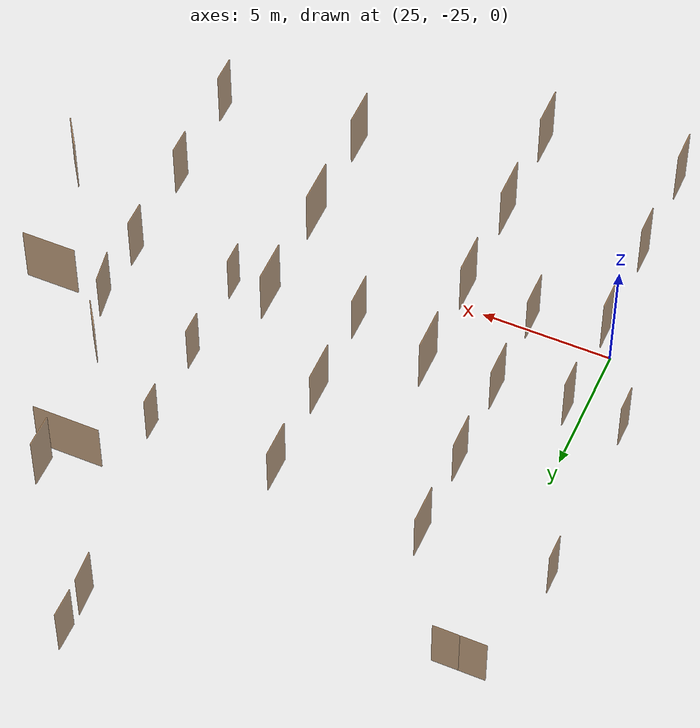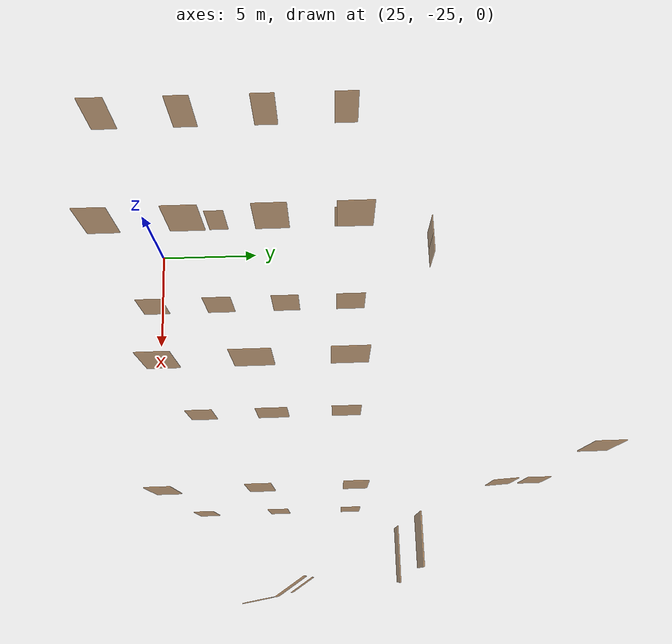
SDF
<sdf version="1.7">
 <world name="sim_world">
  <model name="L1_left_consult_rm_4_outer">
   <pose>28.179085419791573 -25.272043382946833 0.0 0 0 1.5707963267948966</pose>
   <static>true</static>
   <link name="right">
    <pose>0 0 1.11 0 0 0</pose>
    <visual name="right_visual">
     <geometry><box><size>1.3399250028845076 0.03 2.2</size></box></geometry>
     <material>
      <ambient>0.5 0.25 0 0.6</ambient>
      <diffuse>0.5 0.25 0 0.6</diffuse>
      <pbr><metal><metalness>0.0</metalness></metal></pbr>
     </material>
    </visual>
    <collision name="right_collision">
     <geometry><box><size>1.3399250028845076 0.03 2.2</size></box></geometry>
     <surface><contact><collide_bitmask>0x02</collide_bitmask></contact></surface>
    </collision>
    <inertial>
     <mass>50.0</mass>
     <inertia><ixx>20.17041666666667</ixx><iyy>27.64749588897937</iyy><izz>7.484579222312698</izz></inertia>
    </inertial>
   </link>
   <joint name="right_joint" type="prismatic">
    <parent>world</parent>
    <child>right</child>
    <axis>
     <xyz>1 0 0</xyz>
     <limit><lower>0.0</lower><upper>1.3499250028845076</upper><effort>500.0</effort></limit>
    </axis>
   </joint>
  </model>
  <model name="L1_left_consult_rm_3_outer">
   <pose>28.179085419791573 -21.845877081650727 0.0 0 0 1.5707963267948966</pose>
   <static>true</static>
   <link name="right">
    <pose>0 0 1.11 0 0 0</pose>
    <visual name="right_visual">
     <geometry><box><size>1.4299792315680138 0.03 2.2</size></box></geometry>
     <material>
      <ambient>0.5 0.25 0 0.6</ambient>
      <diffuse>0.5 0.25 0 0.6</diffuse>
      <pbr><metal><metalness>0.0</metalness></metal></pbr>
     </material>
    </visual>
    <collision name="right_collision">
     <geometry><box><size>1.4299792315680138 0.03 2.2</size></box></geometry>
     <surface><contact><collide_bitmask>0x02</collide_bitmask></contact></surface>
    </collision>
    <inertial>
     <mass>50.0</mass>
     <inertia><ixx>20.17041666666667</ixx><iyy>28.686835844649366</iyy><izz>8.523919177982698</izz></inertia>
    </inertial>
   </link>
   <joint name="right_joint" type="prismatic">
    <parent>world</parent>
    <child>right</child>
    <axis>
     <xyz>1 0 0</xyz>
     <limit><lower>0.0</lower><upper>1.4399792315680138</upper><effort>500.0</effort></limit>
    </axis>
   </joint>
  </model>
  <model name="L1_left_consult_rm_2_outer">
   <pose>28.179085419791573 -18.38420060766895 0.0 0 0 1.5707963267948966</pose>
   <static>true</static>
   <link name="right">
    <pose>0 0 1.11 0 0 0</pose>
    <visual name="right_visual">
     <geometry><box><size>1.3918306988192783 0.03 2.2</size></box></geometry>
     <material>
      <ambient>0.5 0.25 0 0.6</ambient>
      <diffuse>0.5 0.25 0 0.6</diffuse>
      <pbr><metal><metalness>0.0</metalness></metal></pbr>
     </material>
    </visual>
    <collision name="right_collision">
     <geometry><box><size>1.3918306988192783 0.03 2.2</size></box></geometry>
     <surface><contact><collide_bitmask>0x02</collide_bitmask></contact></surface>
    </collision>
    <inertial>
     <mass>50.0</mass>
     <inertia><ixx>20.17041666666667</ixx><iyy>28.23830289239901</iyy><izz>8.075386225732336</izz></inertia>
    </inertial>
   </link>
   <joint name="right_joint" type="prismatic">
    <parent>world</parent>
    <child>right</child>
    <axis>
     <xyz>1 0 0</xyz>
     <limit><lower>0.0</lower><upper>1.4018306988192784</upper><effort>500.0</effort></limit>
    </axis>
   </joint>
  </model>
  <model name="L1_left_consult_rm_1_outer">
   <pose>28.179085419791573 -15.017895465559029 0.0 0 0 -1.5707963267948966</pose>
   <static>true</static>
   <link name="right">
    <pose>0 0 1.11 0 0 0</pose>
    <visual name="right_visual">
     <geometry><box><size>1.4871885696703975 0.03 2.2</size></box></geometry>
     <material>
      <ambient>0.5 0.25 0 0.6</ambient>
      <diffuse>0.5 0.25 0 0.6</diffuse>
      <pbr><metal><metalness>0.0</metalness></metal></pbr>
     </material>
    </visual>
    <collision name="right_collision">
     <geometry><box><size>1.4871885696703975 0.03 2.2</size></box></geometry>
     <surface><contact><collide_bitmask>0x02</collide_bitmask></contact></surface>
    </collision>
    <inertial>
     <mass>50.0</mass>
     <inertia><ixx>20.17041666666667</ixx><iyy>29.38220767399285</iyy><izz>9.219291007326179</izz></inertia>
    </inertial>
   </link>
   <joint name="right_joint" type="prismatic">
    <parent>world</parent>
    <child>right</child>
    <axis>
     <xyz>1 0 0</xyz>
     <limit><lower>0.0</lower><upper>1.4971885696703975</upper><effort>500.0</effort></limit>
    </axis>
   </joint>
  </model>
  <model name="L1_right_consult_rm_11_outer">
   <pose>33.97311257259339 -22.67927579708475 0.0 0 0 -1.5707963267948966</pose>
   <static>true</static>
   <link name="right">
    <pose>0 0 1.11 0 0 0</pose>
    <visual name="right_visual">
     <geometry><box><size>1.3049532710280383 0.03 2.2</size></box></geometry>
     <material>
      <ambient>0.5 0.25 0 0.6</ambient>
      <diffuse>0.5 0.25 0 0.6</diffuse>
      <pbr><metal><metalness>0.0</metalness></metal></pbr>
     </material>
    </visual>
    <collision name="right_collision">
     <geometry><box><size>1.3049532710280383 0.03 2.2</size></box></geometry>
     <surface><contact><collide_bitmask>0x02</collide_bitmask></contact></surface>
    </collision>
    <inertial>
     <mass>50.0</mass>
     <inertia><ixx>20.17041666666667</ixx><iyy>27.26209599819491</iyy><izz>7.099179331528236</izz></inertia>
    </inertial>
   </link>
   <joint name="right_joint" type="prismatic">
    <parent>world</parent>
    <child>right</child>
    <axis>
     <xyz>1 0 0</xyz>
     <limit><lower>0.0</lower><upper>1.3149532710280383</upper><effort>500.0</effort></limit>
    </axis>
   </joint>
  </model>
  <model name="L1_right_consult_rm_12_outer">
   <pose>33.97311257259339 -19.137196646282852 0.0 0 0 -1.5707963267948966</pose>
   <static>true</static>
   <link name="right">
    <pose>0 0 1.11 0 0 0</pose>
    <visual name="right_visual">
     <geometry><box><size>1.5655586323602984 0.03 2.2</size></box></geometry>
     <material>
      <ambient>0.5 0.25 0 0.6</ambient>
      <diffuse>0.5 0.25 0 0.6</diffuse>
      <pbr><metal><metalness>0.0</metalness></metal></pbr>
     </material>
    </visual>
    <collision name="right_collision">
     <geometry><box><size>1.5655586323602984 0.03 2.2</size></box></geometry>
     <surface><contact><collide_bitmask>0x02</collide_bitmask></contact></surface>
    </collision>
    <inertial>
     <mass>50.0</mass>
     <inertia><ixx>20.17041666666667</ixx><iyy>30.379057630657705</iyy><izz>10.216140963991034</izz></inertia>
    </inertial>
   </link>
   <joint name="right_joint" type="prismatic">
    <parent>world</parent>
    <child>right</child>
    <axis>
     <xyz>1 0 0</xyz>
     <limit><lower>0.0</lower><upper>1.5755586323602984</upper><effort>500.0</effort></limit>
    </axis>
   </joint>
  </model>
  <model name="L1_right_consult_rm_13_outer">
   <pose>33.97311257259339 -15.447046267451267 0.0 0 0 -1.5707963267948966</pose>
   <static>true</static>
   <link name="right">
    <pose>0 0 1.11 0 0 0</pose>
    <visual name="right_visual">
     <geometry><box><size>1.4589473481789168 0.03 2.2</size></box></geometry>
     <material>
      <ambient>0.5 0.25 0 0.6</ambient>
      <diffuse>0.5 0.25 0 0.6</diffuse>
      <pbr><metal><metalness>0.0</metalness></metal></pbr>
     </material>
    </visual>
    <collision name="right_collision">
     <geometry><box><size>1.4589473481789168 0.03 2.2</size></box></geometry>
     <surface><contact><collide_bitmask>0x02</collide_bitmask></contact></surface>
    </collision>
    <inertial>
     <mass>50.0</mass>
     <inertia><ixx>20.17041666666667</ixx><iyy>29.035530686492898</iyy><izz>8.872614019826223</izz></inertia>
    </inertial>
   </link>
   <joint name="right_joint" type="prismatic">
    <parent>world</parent>
    <child>right</child>
    <axis>
     <xyz>1 0 0</xyz>
     <limit><lower>0.0</lower><upper>1.4689473481789168</upper><effort>500.0</effort></limit>
    </axis>
   </joint>
  </model>
  <model name="L1_left_consult_rm_1_inner">
   <pose>23.381523787546655 -15.199148109688101 0.0 0 0 -1.5707963267948966</pose>
   <static>true</static>
   <link name="right">
    <pose>0 0 1.11 0 0 0</pose>
    <visual name="right_visual">
     <geometry><box><size>0.9793042575285555 0.03 2.2</size></box></geometry>
     <material>
      <ambient>0.5 0.25 0 0.6</ambient>
      <diffuse>0.5 0.25 0 0.6</diffuse>
      <pbr><metal><metalness>0.0</metalness></metal></pbr>
     </material>
    </visual>
    <collision name="right_collision">
     <geometry><box><size>0.9793042575285555 0.03 2.2</size></box></geometry>
     <surface><contact><collide_bitmask>0x02</collide_bitmask></contact></surface>
    </collision>
    <inertial>
     <mass>50.0</mass>
     <inertia><ixx>20.17041666666667</ixx><iyy>24.162653453389822</iyy><izz>3.999736786723148</izz></inertia>
    </inertial>
   </link>
   <joint name="right_joint" type="prismatic">
    <parent>world</parent>
    <child>right</child>
    <axis>
     <xyz>1 0 0</xyz>
     <limit><lower>0.0</lower><upper>0.9893042575285556</upper><effort>500.0</effort></limit>
    </axis>
   </joint>
  </model>
  <model name="L1_left_consult_rm_3_inner">
   <pose>23.381523787546655 -22.029202722972215 0.0 0 0 -1.5707963267948966</pose>
   <static>true</static>
   <link name="right">
    <pose>0 0 1.11 0 0 0</pose>
    <visual name="right_visual">
     <geometry><box><size>1.0173451021114575 0.03 2.2</size></box></geometry>
     <material>
      <ambient>0.5 0.25 0 0.6</ambient>
      <diffuse>0.5 0.25 0 0.6</diffuse>
      <pbr><metal><metalness>0.0</metalness></metal></pbr>
     </material>
    </visual>
    <collision name="right_collision">
     <geometry><box><size>1.0173451021114575 0.03 2.2</size></box></geometry>
     <surface><contact><collide_bitmask>0x02</collide_bitmask></contact></surface>
    </collision>
    <inertial>
     <mass>50.0</mass>
     <inertia><ixx>20.17041666666667</ixx><iyy>24.479129403292387</iyy><izz>4.316212736625716</izz></inertia>
    </inertial>
   </link>
   <joint name="right_joint" type="prismatic">
    <parent>world</parent>
    <child>right</child>
    <axis>
     <xyz>1 0 0</xyz>
     <limit><lower>0.0</lower><upper>1.0273451021114575</upper><effort>500.0</effort></limit>
    </axis>
   </joint>
  </model>
  <model name="L1_cleaning_supplies">
   <pose>37.73509095804011 -6.428418137763938 0.0 0 0 1.5707963267948966</pose>
   <static>true</static>
   <link name="right">
    <pose>0 0 1.11 0 0 0</pose>
    <visual name="right_visual">
     <geometry><box><size>1.1157720856890128 0.03 2.2</size></box></geometry>
     <material>
      <ambient>0.5 0.25 0 0.6</ambient>
      <diffuse>0.5 0.25 0 0.6</diffuse>
      <pbr><metal><metalness>0.0</metalness></metal></pbr>
     </material>
    </visual>
    <collision name="right_collision">
     <geometry><box><size>1.1157720856890128 0.03 2.2</size></box></geometry>
     <surface><contact><collide_bitmask>0x02</collide_bitmask></contact></surface>
    </collision>
    <inertial>
     <mass>50.0</mass>
     <inertia><ixx>20.17041666666667</ixx><iyy>25.35394728001171</iyy><izz>5.19103061334504</izz></inertia>
    </inertial>
   </link>
   <joint name="right_joint" type="revolute">
    <parent>world</parent>
    <child>right</child>
    <axis><xyz>0 0 -1</xyz><limit><lower>0</lower><upper>1.57</upper></limit></axis>
    <pose>0.5628860428445064 0 0 0 0 0</pose>
   </joint>
  </model>
  <model name="L1_wc_2">
   <pose>37.76922810661132 -8.000907657397798 0.0 0 0 1.6272475606047323</pose>
   <static>true</static>
   <link name="right">
    <pose>0 0 1.11 0 0 0</pose>
    <visual name="right_visual">
     <geometry><box><size>1.2000811286351407 0.03 2.2</size></box></geometry>
     <material>
      <ambient>0.5 0.25 0 0.6</ambient>
      <diffuse>0.5 0.25 0 0.6</diffuse>
      <pbr><metal><metalness>0.0</metalness></metal></pbr>
     </material>
    </visual>
    <collision name="right_collision">
     <geometry><box><size>1.2000811286351407 0.03 2.2</size></box></geometry>
     <surface><contact><collide_bitmask>0x02</collide_bitmask></contact></surface>
    </collision>
    <inertial>
     <mass>50.0</mass>
     <inertia><ixx>20.17041666666667</ixx><iyy>26.167477980442474</iyy><izz>6.004561313775805</izz></inertia>
    </inertial>
   </link>
   <joint name="right_joint" type="revolute">
    <parent>world</parent>
    <child>right</child>
    <axis><xyz>0 0 -1</xyz><limit><lower>0</lower><upper>1.57</upper></limit></axis>
    <pose>0.6050405643175704 0 0 0 0 0</pose>
   </joint>
  </model>
  <model name="L1_right_consult_rm_11_inner">
   <pose>38.85542479135422 -22.34758278527751 0.0 0 0 1.5707963267948966</pose>
   <static>true</static>
   <link name="right">
    <pose>0 0 1.11 0 0 0</pose>
    <visual name="right_visual">
     <geometry><box><size>0.9258640052305702 0.03 2.2</size></box></geometry>
     <material>
      <ambient>0.5 0.25 0 0.6</ambient>
      <diffuse>0.5 0.25 0 0.6</diffuse>
      <pbr><metal><metalness>0.0</metalness></metal></pbr>
     </material>
    </visual>
    <collision name="right_collision">
     <geometry><box><size>0.9258640052305702 0.03 2.2</size></box></geometry>
     <surface><contact><collide_bitmask>0x02</collide_bitmask></contact></surface>
    </collision>
    <inertial>
     <mass>50.0</mass>
     <inertia><ixx>20.17041666666667</ixx><iyy>23.738433984089976</iyy><izz>3.575517317423306</izz></inertia>
    </inertial>
   </link>
   <joint name="right_joint" type="prismatic">
    <parent>world</parent>
    <child>right</child>
    <axis>
     <xyz>1 0 0</xyz>
     <limit><lower>0.0</lower><upper>0.9358640052305702</upper><effort>500.0</effort></limit>
    </axis>
   </joint>
  </model>
  <model name="L1_right_consult_rm_2_inner">
   <pose>42.93730433444871 -19.879491173416426 0.0 0 0 -1.4067292151199144</pose>
   <static>true</static>
   <link name="right">
    <pose>0 0 1.11 0 0 0</pose>
    <visual name="right_visual">
     <geometry><box><size>1.3117728040741947 0.03 2.2</size></box></geometry>
     <material>
      <ambient>0.5 0.25 0 0.6</ambient>
      <diffuse>0.5 0.25 0 0.6</diffuse>
      <pbr><metal><metalness>0.0</metalness></metal></pbr>
     </material>
    </visual>
    <collision name="right_collision">
     <geometry><box><size>1.3117728040741947 0.03 2.2</size></box></geometry>
     <surface><contact><collide_bitmask>0x02</collide_bitmask></contact></surface>
    </collision>
    <inertial>
     <mass>50.0</mass>
     <inertia><ixx>20.17041666666667</ixx><iyy>27.336449539619487</iyy><izz>7.173532872952816</izz></inertia>
    </inertial>
   </link>
   <joint name="right_joint" type="revolute">
    <parent>world</parent>
    <child>right</child>
    <axis><xyz>0 0 -1</xyz><limit><lower>0</lower><upper>1.57</upper></limit></axis>
    <pose>0.6608864020370974 0 0 0 0 0</pose>
   </joint>
  </model>
  <model name="L1_right_consult_rm_12_inner">
   <pose>38.85542479135422 -18.86473212568749 0.0 0 0 1.5707963267948966</pose>
   <static>true</static>
   <link name="right">
    <pose>0 0 1.11 0 0 0</pose>
    <visual name="right_visual">
     <geometry><box><size>0.9258640052305667 0.03 2.2</size></box></geometry>
     <material>
      <ambient>0.5 0.25 0 0.6</ambient>
      <diffuse>0.5 0.25 0 0.6</diffuse>
      <pbr><metal><metalness>0.0</metalness></metal></pbr>
     </material>
    </visual>
    <collision name="right_collision">
     <geometry><box><size>0.9258640052305667 0.03 2.2</size></box></geometry>
     <surface><contact><collide_bitmask>0x02</collide_bitmask></contact></surface>
    </collision>
    <inertial>
     <mass>50.0</mass>
     <inertia><ixx>20.17041666666667</ixx><iyy>23.738433984089948</iyy><izz>3.5755173174232784</izz></inertia>
    </inertial>
   </link>
   <joint name="right_joint" type="prismatic">
    <parent>world</parent>
    <child>right</child>
    <axis>
     <xyz>1 0 0</xyz>
     <limit><lower>0.0</lower><upper>0.9358640052305667</upper><effort>500.0</effort></limit>
    </axis>
   </joint>
  </model>
  <model name="L1_right_consult_rm_1_inner">
   <pose>42.30254990192688 -17.806843967539727 0.0 0 0 -0.9867955334441539</pose>
   <static>true</static>
   <link name="right">
    <pose>0 0 1.11 0 0 0</pose>
    <visual name="right_visual">
     <geometry><box><size>1.1804239723782883 0.03 2.2</size></box></geometry>
     <material>
      <ambient>0.5 0.25 0 0.6</ambient>
      <diffuse>0.5 0.25 0 0.6</diffuse>
      <pbr><metal><metalness>0.0</metalness></metal></pbr>
     </material>
    </visual>
    <collision name="right_collision">
     <geometry><box><size>1.1804239723782883 0.03 2.2</size></box></geometry>
     <surface><contact><collide_bitmask>0x02</collide_bitmask></contact></surface>
    </collision>
    <inertial>
     <mass>50.0</mass>
     <inertia><ixx>20.17041666666667</ixx><iyy>25.972503144022248</iyy><izz>5.809586477355575</izz></inertia>
    </inertial>
   </link>
   <joint name="right_joint" type="revolute">
    <parent>world</parent>
    <child>right</child>
    <axis><xyz>0 0 -1</xyz><limit><lower>0</lower><upper>1.57</upper></limit></axis>
    <pose>0.5952119861891442 0 0 0 0 0</pose>
   </joint>
  </model>
  <model name="L1_right_consult_rm_13_inner">
   <pose>38.85542479135422 -15.441109957309347 0.0 0 0 1.5707963267948966</pose>
   <static>true</static>
   <link name="right">
    <pose>0 0 1.11 0 0 0</pose>
    <visual name="right_visual">
     <geometry><box><size>0.90217260874582 0.03 2.2</size></box></geometry>
     <material>
      <ambient>0.5 0.25 0 0.6</ambient>
      <diffuse>0.5 0.25 0 0.6</diffuse>
      <pbr><metal><metalness>0.0</metalness></metal></pbr>
     </material>
    </visual>
    <collision name="right_collision">
     <geometry><box><size>0.90217260874582 0.03 2.2</size></box></geometry>
     <surface><contact><collide_bitmask>0x02</collide_bitmask></contact></surface>
    </collision>
    <inertial>
     <mass>50.0</mass>
     <inertia><ixx>20.17041666666667</ixx><iyy>23.557980899880164</iyy><izz>3.395064233213493</izz></inertia>
    </inertial>
   </link>
   <joint name="right_joint" type="prismatic">
    <parent>world</parent>
    <child>right</child>
    <axis>
     <xyz>1 0 0</xyz>
     <limit><lower>0.0</lower><upper>0.91217260874582</upper><effort>500.0</effort></limit>
    </axis>
   </joint>
  </model>
  <model name="L1_existing_single_ahu">
   <pose>24.978579670012714 -10.622360678435454 0.0 0 0 3.141592653589793</pose>
   <static>true</static>
   <link name="right">
    <pose>0.502641244567517 0 1.11 0 0 0</pose>
    <visual name="right_visual">
     <geometry><box><size>0.995282489135034 0.03 2.2</size></box></geometry>
     <material>
      <ambient>0.5 0.25 0 0.6</ambient>
      <diffuse>0.5 0.25 0 0.6</diffuse>
      <pbr><metal><metalness>0.0</metalness></metal></pbr>
     </material>
    </visual>
    <collision name="right_collision">
     <geometry><box><size>0.995282489135034 0.03 2.2</size></box></geometry>
     <surface><contact><collide_bitmask>0x02</collide_bitmask></contact></surface>
    </collision>
    <inertial>
     <mass>50.0</mass>
     <inertia><ixx>20.17041666666667</ixx><iyy>24.29411347157846</iyy><izz>4.131196804911788</izz></inertia>
    </inertial>
   </link>
   <joint name="right_joint" type="revolute">
    <parent>world</parent>
    <child>right</child>
    <axis><xyz>0 0 -1</xyz><limit><lower>0</lower><upper>1.57</upper></limit></axis>
    <pose>0.502641244567517 0 0 0 0 0</pose>
   </joint>
   <link name="left">
    <pose>-0.502641244567517 0 1.11 0 0 0</pose>
    <visual name="left_visual">
     <geometry><box><size>0.995282489135034 0.03 2.2</size></box></geometry>
     <material>
      <ambient>0.5 0.25 0 0.6</ambient>
      <diffuse>0.5 0.25 0 0.6</diffuse>
      <pbr><metal><metalness>0.0</metalness></metal></pbr>
     </material>
    </visual>
    <collision name="left_collision">
     <geometry><box><size>0.995282489135034 0.03 2.2</size></box></geometry>
     <surface><contact><collide_bitmask>0x02</collide_bitmask></contact></surface>
    </collision>
    <inertial>
     <mass>50.0</mass>
     <inertia><ixx>20.17041666666667</ixx><iyy>24.29411347157846</iyy><izz>4.131196804911788</izz></inertia>
    </inertial>
   </link>
   <joint name="left_joint" type="revolute">
    <parent>world</parent>
    <child>left</child>
    <axis><xyz>0 0 -1</xyz><limit><lower>-1.57</lower><upper>0</upper></limit></axis>
    <pose>-0.502641244567517 0 0 0 0 0</pose>
   </joint>
  </model>
  <model name="L1_right_inner">
   <pose>41.063624475981726 -13.26668397369333 0.0 0 0 3.141247508642615</pose>
   <link name="right">
    <pose>0 0 1.11 0 0 0</pose>
    <visual name="right_visual">
     <geometry><box><size>2.5640703813862693 0.03 2.2</size></box></geometry>
     <material>
      <ambient>0.5 0.25 0 0.6</ambient>
      <diffuse>0.5 0.25 0 0.6</diffuse>
      <pbr><metal><metalness>0.0</metalness></metal></pbr>
     </material>
    </visual>
    <collision name="right_collision">
     <geometry><box><size>2.5640703813862693 0.03 2.2</size></box></geometry>
     <surface><contact><collide_bitmask>0x02</collide_bitmask></contact></surface>
    </collision>
    <inertial>
     <mass>50.0</mass>
     <inertia><ixx>20.17041666666667</ixx><iyy>47.56023716959304</iyy><izz>27.39732050292637</izz></inertia>
    </inertial>
   </link>
   <joint name="right_joint" type="prismatic">
    <parent>world</parent>
    <child>right</child>
    <axis>
     <xyz>1 0 0</xyz>
     <limit><lower>0.0</lower><upper>2.574070381386269</upper><effort>500.0</effort></limit>
    </axis>
   </joint>
   <plugin name="door" filename="libdoor.so">
    <v_max_door>0.2</v_max_door>
    <a_max_door>0.2</a_max_door>
    <a_nom_door>0.08</a_nom_door>
    <dx_min_door>0.001</dx_min_door>
    <f_max_door>100.0</f_max_door>
    <door name="L1_right_inner" type="SlidingDoor" left_joint_name="empty_joint" right_joint_name="right_joint"/>
   </plugin>
  </model>
  <model name="L2_left_consult_rm_4_outer">
   <pose>28.179085419791573 -25.272043382946833 10.0 0 0 1.5707963267948966</pose>
   <static>true</static>
   <link name="right">
    <pose>0 0 1.11 0 0 0</pose>
    <visual name="right_visual">
     <geometry><box><size>1.3399250028845076 0.03 2.2</size></box></geometry>
     <material>
      <ambient>0.5 0.25 0 0.6</ambient>
      <diffuse>0.5 0.25 0 0.6</diffuse>
      <pbr><metal><metalness>0.0</metalness></metal></pbr>
     </material>
    </visual>
    <collision name="right_collision">
     <geometry><box><size>1.3399250028845076 0.03 2.2</size></box></geometry>
     <surface><contact><collide_bitmask>0x02</collide_bitmask></contact></surface>
    </collision>
    <inertial>
     <mass>50.0</mass>
     <inertia><ixx>20.17041666666667</ixx><iyy>27.64749588897937</iyy><izz>7.484579222312698</izz></inertia>
    </inertial>
   </link>
   <joint name="right_joint" type="prismatic">
    <parent>world</parent>
    <child>right</child>
    <axis>
     <xyz>1 0 0</xyz>
     <limit><lower>0.0</lower><upper>1.3499250028845076</upper><effort>500.0</effort></limit>
    </axis>
   </joint>
  </model>
  <model name="L2_left_consult_rm_3_outer">
   <pose>28.179085419791573 -21.845877081650727 10.0 0 0 1.5707963267948966</pose>
   <static>true</static>
   <link name="right">
    <pose>0 0 1.11 0 0 0</pose>
    <visual name="right_visual">
     <geometry><box><size>1.4299792315680138 0.03 2.2</size></box></geometry>
     <material>
      <ambient>0.5 0.25 0 0.6</ambient>
      <diffuse>0.5 0.25 0 0.6</diffuse>
      <pbr><metal><metalness>0.0</metalness></metal></pbr>
     </material>
    </visual>
    <collision name="right_collision">
     <geometry><box><size>1.4299792315680138 0.03 2.2</size></box></geometry>
     <surface><contact><collide_bitmask>0x02</collide_bitmask></contact></surface>
    </collision>
    <inertial>
     <mass>50.0</mass>
     <inertia><ixx>20.17041666666667</ixx><iyy>28.686835844649366</iyy><izz>8.523919177982698</izz></inertia>
    </inertial>
   </link>
   <joint name="right_joint" type="prismatic">
    <parent>world</parent>
    <child>right</child>
    <axis>
     <xyz>1 0 0</xyz>
     <limit><lower>0.0</lower><upper>1.4399792315680138</upper><effort>500.0</effort></limit>
    </axis>
   </joint>
  </model>
  <model name="L2_left_consult_rm_2_outer">
   <pose>28.179085419791573 -18.38420060766895 10.0 0 0 1.5707963267948966</pose>
   <static>true</static>
   <link name="right">
    <pose>0 0 1.11 0 0 0</pose>
    <visual name="right_visual">
     <geometry><box><size>1.3918306988192783 0.03 2.2</size></box></geometry>
     <material>
      <ambient>0.5 0.25 0 0.6</ambient>
      <diffuse>0.5 0.25 0 0.6</diffuse>
      <pbr><metal><metalness>0.0</metalness></metal></pbr>
     </material>
    </visual>
    <collision name="right_collision">
     <geometry><box><size>1.3918306988192783 0.03 2.2</size></box></geometry>
     <surface><contact><collide_bitmask>0x02</collide_bitmask></contact></surface>
    </collision>
    <inertial>
     <mass>50.0</mass>
     <inertia><ixx>20.17041666666667</ixx><iyy>28.23830289239901</iyy><izz>8.075386225732336</izz></inertia>
    </inertial>
   </link>
   <joint name="right_joint" type="prismatic">
    <parent>world</parent>
    <child>right</child>
    <axis>
     <xyz>1 0 0</xyz>
     <limit><lower>0.0</lower><upper>1.4018306988192784</upper><effort>500.0</effort></limit>
    </axis>
   </joint>
  </model>
  <model name="L2_left_consult_rm_1_outer">
   <pose>28.179085419791573 -15.017895465559029 10.0 0 0 -1.5707963267948966</pose>
   <static>true</static>
   <link name="right">
    <pose>0 0 1.11 0 0 0</pose>
    <visual name="right_visual">
     <geometry><box><size>1.4871885696703975 0.03 2.2</size></box></geometry>
     <material>
      <ambient>0.5 0.25 0 0.6</ambient>
      <diffuse>0.5 0.25 0 0.6</diffuse>
      <pbr><metal><metalness>0.0</metalness></metal></pbr>
     </material>
    </visual>
    <collision name="right_collision">
     <geometry><box><size>1.4871885696703975 0.03 2.2</size></box></geometry>
     <surface><contact><collide_bitmask>0x02</collide_bitmask></contact></surface>
    </collision>
    <inertial>
     <mass>50.0</mass>
     <inertia><ixx>20.17041666666667</ixx><iyy>29.38220767399285</iyy><izz>9.219291007326179</izz></inertia>
    </inertial>
   </link>
   <joint name="right_joint" type="prismatic">
    <parent>world</parent>
    <child>right</child>
    <axis>
     <xyz>1 0 0</xyz>
     <limit><lower>0.0</lower><upper>1.4971885696703975</upper><effort>500.0</effort></limit>
    </axis>
   </joint>
  </model>
  <model name="L2_right_consult_rm_11_outer">
   <pose>33.97311257259339 -22.67927579708475 10.0 0 0 -1.5707963267948966</pose>
   <static>true</static>
   <link name="right">
    <pose>0 0 1.11 0 0 0</pose>
    <visual name="right_visual">
     <geometry><box><size>1.3049532710280383 0.03 2.2</size></box></geometry>
     <material>
      <ambient>0.5 0.25 0 0.6</ambient>
      <diffuse>0.5 0.25 0 0.6</diffuse>
      <pbr><metal><metalness>0.0</metalness></metal></pbr>
     </material>
    </visual>
    <collision name="right_collision">
     <geometry><box><size>1.3049532710280383 0.03 2.2</size></box></geometry>
     <surface><contact><collide_bitmask>0x02</collide_bitmask></contact></surface>
    </collision>
    <inertial>
     <mass>50.0</mass>
     <inertia><ixx>20.17041666666667</ixx><iyy>27.26209599819491</iyy><izz>7.099179331528236</izz></inertia>
    </inertial>
   </link>
   <joint name="right_joint" type="prismatic">
    <parent>world</parent>
    <child>right</child>
    <axis>
     <xyz>1 0 0</xyz>
     <limit><lower>0.0</lower><upper>1.3149532710280383</upper><effort>500.0</effort></limit>
    </axis>
   </joint>
  </model>
  <model name="L2_right_consult_rm_12_outer">
   <pose>33.97311257259339 -19.137196646282852 10.0 0 0 -1.5707963267948966</pose>
   <static>true</static>
   <link name="right">
    <pose>0 0 1.11 0 0 0</pose>
    <visual name="right_visual">
     <geometry><box><size>1.5655586323602984 0.03 2.2</size></box></geometry>
     <material>
      <ambient>0.5 0.25 0 0.6</ambient>
      <diffuse>0.5 0.25 0 0.6</diffuse>
      <pbr><metal><metalness>0.0</metalness></metal></pbr>
     </material>
    </visual>
    <collision name="right_collision">
     <geometry><box><size>1.5655586323602984 0.03 2.2</size></box></geometry>
     <surface><contact><collide_bitmask>0x02</collide_bitmask></contact></surface>
    </collision>
    <inertial>
     <mass>50.0</mass>
     <inertia><ixx>20.17041666666667</ixx><iyy>30.379057630657705</iyy><izz>10.216140963991034</izz></inertia>
    </inertial>
   </link>
   <joint name="right_joint" type="prismatic">
    <parent>world</parent>
    <child>right</child>
    <axis>
     <xyz>1 0 0</xyz>
     <limit><lower>0.0</lower><upper>1.5755586323602984</upper><effort>500.0</effort></limit>
    </axis>
   </joint>
  </model>
  <model name="L2_right_consult_rm_13_outer">
   <pose>33.97311257259339 -15.447046267451267 10.0 0 0 -1.5707963267948966</pose>
   <static>true</static>
   <link name="right">
    <pose>0 0 1.11 0 0 0</pose>
    <visual name="right_visual">
     <geometry><box><size>1.4589473481789168 0.03 2.2</size></box></geometry>
     <material>
      <ambient>0.5 0.25 0 0.6</ambient>
      <diffuse>0.5 0.25 0 0.6</diffuse>
      <pbr><metal><metalness>0.0</metalness></metal></pbr>
     </material>
    </visual>
    <collision name="right_collision">
     <geometry><box><size>1.4589473481789168 0.03 2.2</size></box></geometry>
     <surface><contact><collide_bitmask>0x02</collide_bitmask></contact></surface>
    </collision>
    <inertial>
     <mass>50.0</mass>
     <inertia><ixx>20.17041666666667</ixx><iyy>29.035530686492898</iyy><izz>8.872614019826223</izz></inertia>
    </inertial>
   </link>
   <joint name="right_joint" type="prismatic">
    <parent>world</parent>
    <child>right</child>
    <axis>
     <xyz>1 0 0</xyz>
     <limit><lower>0.0</lower><upper>1.4689473481789168</upper><effort>500.0</effort></limit>
    </axis>
   </joint>
  </model>
  <model name="L2_left_consult_rm_4_inner">
   <pose>23.381523787546655 -25.472760663051446 10.0 0 0 -1.5707963267948966</pose>
   <static>true</static>
   <link name="right">
    <pose>0 0 1.11 0 0 0</pose>
    <visual name="right_visual">
     <geometry><box><size>1.0858616976270115 0.03 2.2</size></box></geometry>
     <material>
      <ambient>0.5 0.25 0 0.6</ambient>
      <diffuse>0.5 0.25 0 0.6</diffuse>
      <pbr><metal><metalness>0.0</metalness></metal></pbr>
     </material>
    </visual>
    <collision name="right_collision">
     <geometry><box><size>1.0858616976270115 0.03 2.2</size></box></geometry>
     <surface><contact><collide_bitmask>0x02</collide_bitmask></contact></surface>
    </collision>
    <inertial>
     <mass>50.0</mass>
     <inertia><ixx>20.17041666666667</ixx><iyy>25.079565109889238</iyy><izz>4.916648443222564</izz></inertia>
    </inertial>
   </link>
   <joint name="right_joint" type="prismatic">
    <parent>world</parent>
    <child>right</child>
    <axis>
     <xyz>1 0 0</xyz>
     <limit><lower>0.0</lower><upper>1.0958616976270115</upper><effort>500.0</effort></limit>
    </axis>
   </joint>
  </model>
  <model name="L2_left_consult_rm_3_inner">
   <pose>23.381523787546655 -22.029202722972215 10.0 0 0 -1.5707963267948966</pose>
   <static>true</static>
   <link name="right">
    <pose>0 0 1.11 0 0 0</pose>
    <visual name="right_visual">
     <geometry><box><size>1.0173451021114575 0.03 2.2</size></box></geometry>
     <material>
      <ambient>0.5 0.25 0 0.6</ambient>
      <diffuse>0.5 0.25 0 0.6</diffuse>
      <pbr><metal><metalness>0.0</metalness></metal></pbr>
     </material>
    </visual>
    <collision name="right_collision">
     <geometry><box><size>1.0173451021114575 0.03 2.2</size></box></geometry>
     <surface><contact><collide_bitmask>0x02</collide_bitmask></contact></surface>
    </collision>
    <inertial>
     <mass>50.0</mass>
     <inertia><ixx>20.17041666666667</ixx><iyy>24.479129403292387</iyy><izz>4.316212736625716</izz></inertia>
    </inertial>
   </link>
   <joint name="right_joint" type="prismatic">
    <parent>world</parent>
    <child>right</child>
    <axis>
     <xyz>1 0 0</xyz>
     <limit><lower>0.0</lower><upper>1.0273451021114575</upper><effort>500.0</effort></limit>
    </axis>
   </joint>
  </model>
  <model name="L2_left_consult_rm_2_inner">
   <pose>23.381523787546655 -18.60085573631785 10.0 0 0 -1.5707963267948966</pose>
   <static>true</static>
   <link name="right">
    <pose>0 0 1.11 0 0 0</pose>
    <visual name="right_visual">
     <geometry><box><size>0.9945421329948851 0.03 2.2</size></box></geometry>
     <material>
      <ambient>0.5 0.25 0 0.6</ambient>
      <diffuse>0.5 0.25 0 0.6</diffuse>
      <pbr><metal><metalness>0.0</metalness></metal></pbr>
     </material>
    </visual>
    <collision name="right_collision">
     <geometry><box><size>0.9945421329948851 0.03 2.2</size></box></geometry>
     <surface><contact><collide_bitmask>0x02</collide_bitmask></contact></surface>
    </collision>
    <inertial>
     <mass>50.0</mass>
     <inertia><ixx>20.17041666666667</ixx><iyy>24.287975226258403</iyy><izz>4.125058559591733</izz></inertia>
    </inertial>
   </link>
   <joint name="right_joint" type="prismatic">
    <parent>world</parent>
    <child>right</child>
    <axis>
     <xyz>1 0 0</xyz>
     <limit><lower>0.0</lower><upper>1.0045421329948852</upper><effort>500.0</effort></limit>
    </axis>
   </joint>
  </model>
  <model name="L2_left_consult_rm_1_inner">
   <pose>23.381523787546655 -15.199148109688101 10.0 0 0 -1.5707963267948966</pose>
   <static>true</static>
   <link name="right">
    <pose>0 0 1.11 0 0 0</pose>
    <visual name="right_visual">
     <geometry><box><size>0.9793042575285555 0.03 2.2</size></box></geometry>
     <material>
      <ambient>0.5 0.25 0 0.6</ambient>
      <diffuse>0.5 0.25 0 0.6</diffuse>
      <pbr><metal><metalness>0.0</metalness></metal></pbr>
     </material>
    </visual>
    <collision name="right_collision">
     <geometry><box><size>0.9793042575285555 0.03 2.2</size></box></geometry>
     <surface><contact><collide_bitmask>0x02</collide_bitmask></contact></surface>
    </collision>
    <inertial>
     <mass>50.0</mass>
     <inertia><ixx>20.17041666666667</ixx><iyy>24.162653453389822</iyy><izz>3.999736786723148</izz></inertia>
    </inertial>
   </link>
   <joint name="right_joint" type="prismatic">
    <parent>world</parent>
    <child>right</child>
    <axis>
     <xyz>1 0 0</xyz>
     <limit><lower>0.0</lower><upper>0.9893042575285556</upper><effort>500.0</effort></limit>
    </axis>
   </joint>
  </model>
  <model name="L2_right_consult_rm_13_inner">
   <pose>38.85542479135422 -15.441109957309347 10.0 0 0 1.5707963267948966</pose>
   <static>true</static>
   <link name="right">
    <pose>0 0 1.11 0 0 0</pose>
    <visual name="right_visual">
     <geometry><box><size>0.90217260874582 0.03 2.2</size></box></geometry>
     <material>
      <ambient>0.5 0.25 0 0.6</ambient>
      <diffuse>0.5 0.25 0 0.6</diffuse>
      <pbr><metal><metalness>0.0</metalness></metal></pbr>
     </material>
    </visual>
    <collision name="right_collision">
     <geometry><box><size>0.90217260874582 0.03 2.2</size></box></geometry>
     <surface><contact><collide_bitmask>0x02</collide_bitmask></contact></surface>
    </collision>
    <inertial>
     <mass>50.0</mass>
     <inertia><ixx>20.17041666666667</ixx><iyy>23.557980899880164</iyy><izz>3.395064233213493</izz></inertia>
    </inertial>
   </link>
   <joint name="right_joint" type="prismatic">
    <parent>world</parent>
    <child>right</child>
    <axis>
     <xyz>1 0 0</xyz>
     <limit><lower>0.0</lower><upper>0.91217260874582</upper><effort>500.0</effort></limit>
    </axis>
   </joint>
  </model>
  <model name="L2_right_consult_rm_1_inner">
   <pose>42.30254990192688 -17.806843967539727 10.0 0 0 -0.9867955334441539</pose>
   <static>true</static>
   <link name="right">
    <pose>0 0 1.11 0 0 0</pose>
    <visual name="right_visual">
     <geometry><box><size>1.1804239723782883 0.03 2.2</size></box></geometry>
     <material>
      <ambient>0.5 0.25 0 0.6</ambient>
      <diffuse>0.5 0.25 0 0.6</diffuse>
      <pbr><metal><metalness>0.0</metalness></metal></pbr>
     </material>
    </visual>
    <collision name="right_collision">
     <geometry><box><size>1.1804239723782883 0.03 2.2</size></box></geometry>
     <surface><contact><collide_bitmask>0x02</collide_bitmask></contact></surface>
    </collision>
    <inertial>
     <mass>50.0</mass>
     <inertia><ixx>20.17041666666667</ixx><iyy>25.972503144022248</iyy><izz>5.809586477355575</izz></inertia>
    </inertial>
   </link>
   <joint name="right_joint" type="revolute">
    <parent>world</parent>
    <child>right</child>
    <axis><xyz>0 0 -1</xyz><limit><lower>0</lower><upper>1.57</upper></limit></axis>
    <pose>0.5952119861891442 0 0 0 0 0</pose>
   </joint>
  </model>
  <model name="L2_right_consult_rm_12_inner">
   <pose>38.85542479135422 -18.86473212568749 10.0 0 0 1.5707963267948966</pose>
   <static>true</static>
   <link name="right">
    <pose>0 0 1.11 0 0 0</pose>
    <visual name="right_visual">
     <geometry><box><size>0.9258640052305667 0.03 2.2</size></box></geometry>
     <material>
      <ambient>0.5 0.25 0 0.6</ambient>
      <diffuse>0.5 0.25 0 0.6</diffuse>
      <pbr><metal><metalness>0.0</metalness></metal></pbr>
     </material>
    </visual>
    <collision name="right_collision">
     <geometry><box><size>0.9258640052305667 0.03 2.2</size></box></geometry>
     <surface><contact><collide_bitmask>0x02</collide_bitmask></contact></surface>
    </collision>
    <inertial>
     <mass>50.0</mass>
     <inertia><ixx>20.17041666666667</ixx><iyy>23.738433984089948</iyy><izz>3.5755173174232784</izz></inertia>
    </inertial>
   </link>
   <joint name="right_joint" type="prismatic">
    <parent>world</parent>
    <child>right</child>
    <axis>
     <xyz>1 0 0</xyz>
     <limit><lower>0.0</lower><upper>0.9358640052305667</upper><effort>500.0</effort></limit>
    </axis>
   </joint>
  </model>
  <model name="L2_right_consult_rm_11_inner">
   <pose>38.85542479135422 -22.34758278527751 10.0 0 0 1.5707963267948966</pose>
   <static>true</static>
   <link name="right">
    <pose>0 0 1.11 0 0 0</pose>
    <visual name="right_visual">
     <geometry><box><size>0.9258640052305702 0.03 2.2</size></box></geometry>
     <material>
      <ambient>0.5 0.25 0 0.6</ambient>
      <diffuse>0.5 0.25 0 0.6</diffuse>
      <pbr><metal><metalness>0.0</metalness></metal></pbr>
     </material>
    </visual>
    <collision name="right_collision">
     <geometry><box><size>0.9258640052305702 0.03 2.2</size></box></geometry>
     <surface><contact><collide_bitmask>0x02</collide_bitmask></contact></surface>
    </collision>
    <inertial>
     <mass>50.0</mass>
     <inertia><ixx>20.17041666666667</ixx><iyy>23.738433984089976</iyy><izz>3.575517317423306</izz></inertia>
    </inertial>
   </link>
   <joint name="right_joint" type="prismatic">
    <parent>world</parent>
    <child>right</child>
    <axis>
     <xyz>1 0 0</xyz>
     <limit><lower>0.0</lower><upper>0.9358640052305702</upper><effort>500.0</effort></limit>
    </axis>
   </joint>
  </model>
  <model name="L2_cleaning_supplies">
   <pose>37.73509095804011 -6.428418137763938 10.0 0 0 1.5707963267948966</pose>
   <static>true</static>
   <link name="right">
    <pose>0 0 1.11 0 0 0</pose>
    <visual name="right_visual">
     <geometry><box><size>1.1157720856890128 0.03 2.2</size></box></geometry>
     <material>
      <ambient>0.5 0.25 0 0.6</ambient>
      <diffuse>0.5 0.25 0 0.6</diffuse>
      <pbr><metal><metalness>0.0</metalness></metal></pbr>
     </material>
    </visual>
    <collision name="right_collision">
     <geometry><box><size>1.1157720856890128 0.03 2.2</size></box></geometry>
     <surface><contact><collide_bitmask>0x02</collide_bitmask></contact></surface>
    </collision>
    <inertial>
     <mass>50.0</mass>
     <inertia><ixx>20.17041666666667</ixx><iyy>25.35394728001171</iyy><izz>5.19103061334504</izz></inertia>
    </inertial>
   </link>
   <joint name="right_joint" type="revolute">
    <parent>world</parent>
    <child>right</child>
    <axis><xyz>0 0 -1</xyz><limit><lower>0</lower><upper>1.57</upper></limit></axis>
    <pose>0.5628860428445064 0 0 0 0 0</pose>
   </joint>
  </model>
  <model name="L2_right_inner">
   <pose>40.88623514480216 -13.271597246259772 10.0 0 0 3.141592653589793</pose>
   <link name="right">
    <pose>0 0 1.11 0 0 0</pose>
    <visual name="right_visual">
     <geometry><box><size>1.8703430637283256 0.03 2.2</size></box></geometry>
     <material>
      <ambient>0.5 0.25 0 0.6</ambient>
      <diffuse>0.5 0.25 0 0.6</diffuse>
      <pbr><metal><metalness>0.0</metalness></metal></pbr>
     </material>
    </visual>
    <collision name="right_collision">
     <geometry><box><size>1.8703430637283256 0.03 2.2</size></box></geometry>
     <surface><contact><collide_bitmask>0x02</collide_bitmask></contact></surface>
    </collision>
    <inertial>
     <mass>50.0</mass>
     <inertia><ixx>20.17041666666667</ixx><iyy>34.74242990015275</iyy><izz>14.579513233486082</izz></inertia>
    </inertial>
   </link>
   <joint name="right_joint" type="prismatic">
    <parent>world</parent>
    <child>right</child>
    <axis>
     <xyz>1 0 0</xyz>
     <limit><lower>0.0</lower><upper>1.8803430637283256</upper><effort>500.0</effort></limit>
    </axis>
   </joint>
   <plugin name="door" filename="libdoor.so">
    <v_max_door>0.2</v_max_door>
    <a_max_door>0.2</a_max_door>
    <a_nom_door>0.08</a_nom_door>
    <dx_min_door>0.001</dx_min_door>
    <f_max_door>100.0</f_max_door>
    <door name="L2_right_inner" type="SlidingDoor" left_joint_name="empty_joint" right_joint_name="right_joint"/>
   </plugin>
  </model>
 </world>
</sdf>
